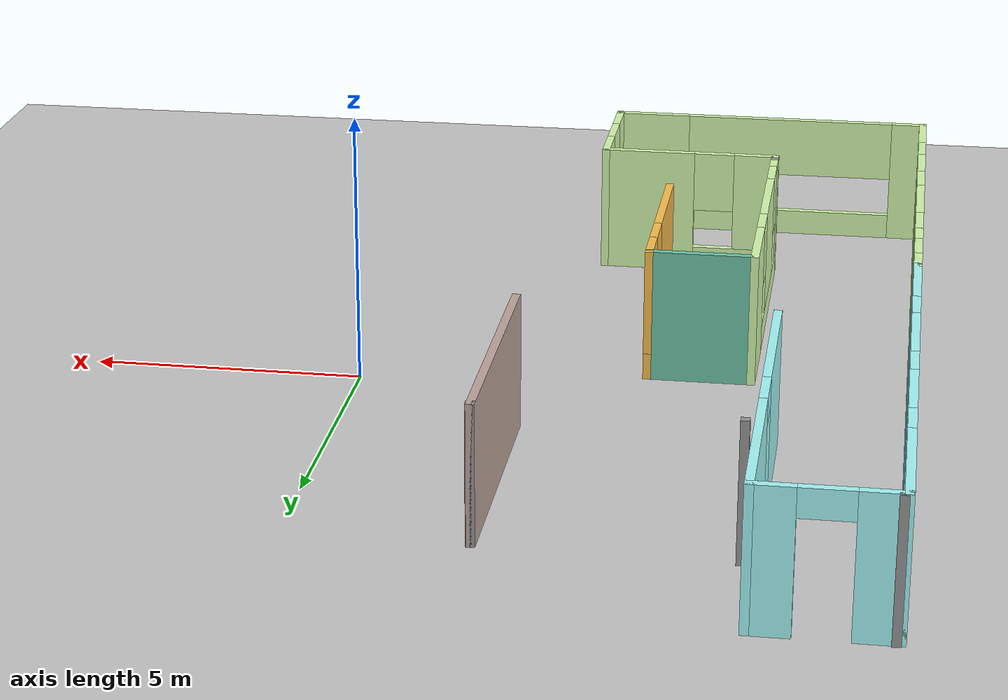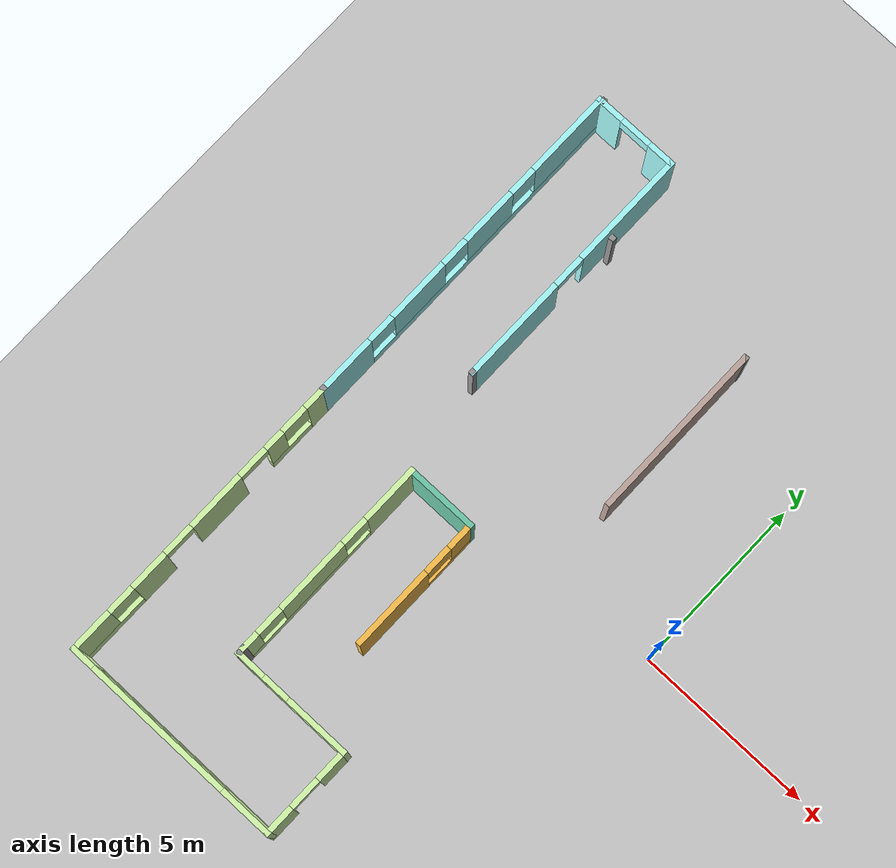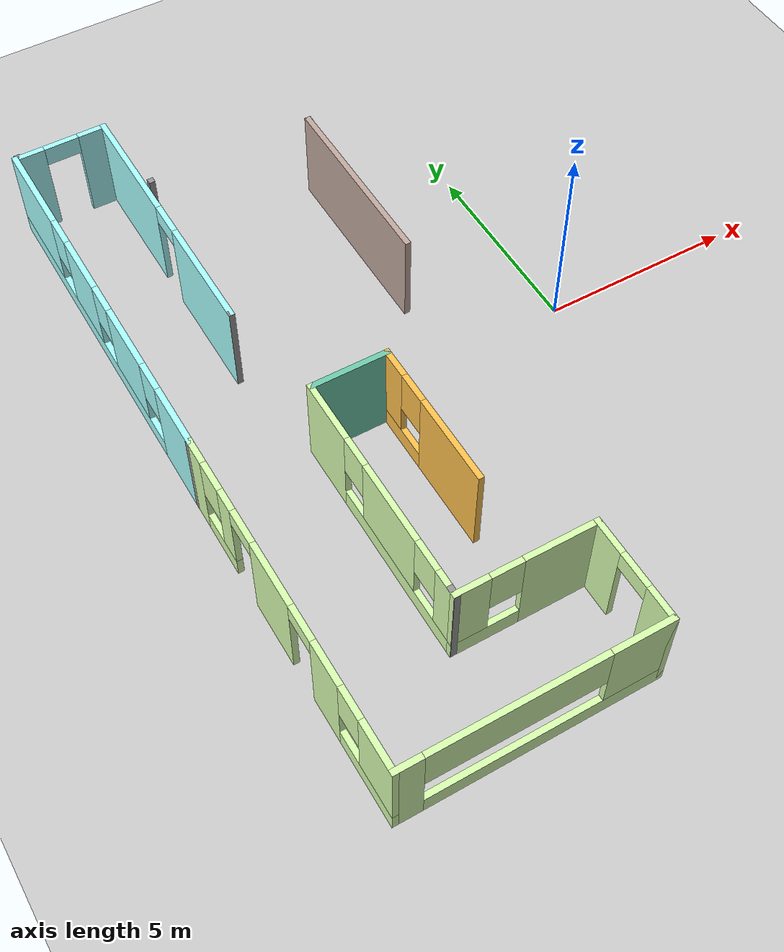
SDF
<sdf version="1.6">
 <world name="default">
  <model name="ground_plane">
   <static>1</static>
   <link name="link">
    <collision name="collision">
     <geometry><plane><normal>0 0 1</normal><size>100 100</size></plane></geometry>
     <surface>
      <contact><collide_bitmask>65535</collide_bitmask></contact>
      <friction><ode><mu>100</mu><mu2>50</mu2></ode></friction>
     </surface>
    </collision>
    <visual name="visual">
     <cast_shadows>0</cast_shadows>
     <geometry><plane><normal>0 0 1</normal><size>100 100</size></plane></geometry>
     <material>
      <script><uri>file://media/materials/scripts/gazebo.material</uri><name>Gazebo/Grey</name></script>
     </material>
    </visual>
   </link>
  </model>
  <model name="building">
   <pose>7.75122 8.09541 0 0 -0 0</pose>
   <link name="Wall_1">
    <pose>-13.0112 -10.8104 0 0 -0 1.5708</pose>
    <visual name="Wall_1_Visual_0">
     <pose>-0.814985 0 1.25 0 -0 0</pose>
     <geometry><box><size>2.37003 0.15 2.5</size></box></geometry>
     <material>
      <script><uri>file://media/materials/scripts/gazebo.material</uri><name>Gazebo/Grey</name></script>
      <ambient>1 0.764706 0.305882 1</ambient>
     </material>
     <meta><layer>0</layer></meta>
    </visual>
    <collision name="Wall_1_Collision_0">
     <geometry><box><size>2.37003 0.15 2.5</size></box></geometry>
     <pose>-0.814985 0 1.25 0 -0 0</pose>
    </collision>
    <visual name="Wall_1_Visual_1">
     <pose>1.18501 0 0.25 0 -0 0</pose>
     <geometry><box><size>1.62997 0.15 0.5</size></box></geometry>
     <material>
      <script><uri>file://media/materials/scripts/gazebo.material</uri><name>Gazebo/Grey</name></script>
      <ambient>1 0.764706 0.305882 1</ambient>
     </material>
     <meta><layer>0</layer></meta>
    </visual>
    <collision name="Wall_1_Collision_1">
     <geometry><box><size>1.62997 0.15 0.5</size></box></geometry>
     <pose>1.18501 0 0.25 0 -0 0</pose>
    </collision>
    <visual name="Wall_1_Visual_2">
     <pose>1.58502 0 1.5 0 -0 0</pose>
     <geometry><box><size>0.82997 0.15 2</size></box></geometry>
     <material>
      <script><uri>file://media/materials/scripts/gazebo.material</uri><name>Gazebo/Grey</name></script>
      <ambient>1 0.764706 0.305882 1</ambient>
     </material>
     <meta><layer>0</layer></meta>
    </visual>
    <collision name="Wall_1_Collision_2">
     <geometry><box><size>0.82997 0.15 2</size></box></geometry>
     <pose>1.58502 0 1.5 0 -0 0</pose>
    </collision>
    <visual name="Wall_1_Visual_3">
     <pose>0.77003 0 1.9 0 -0 0</pose>
     <geometry><box><size>0.8 0.15 1.2</size></box></geometry>
     <material>
      <script><uri>file://media/materials/scripts/gazebo.material</uri><name>Gazebo/Grey</name></script>
      <ambient>1 0.764706 0.305882 1</ambient>
     </material>
     <meta><layer>0</layer></meta>
    </visual>
    <collision name="Wall_1_Collision_3">
     <geometry><box><size>0.8 0.15 1.2</size></box></geometry>
     <pose>0.77003 0 1.9 0 -0 0</pose>
    </collision>
   </link>
   <link name="Wall_10">
    <collision name="Wall_10_Collision">
     <geometry><box><size>0.15 0.15 2.5</size></box></geometry>
     <pose>0 0 1.25 0 -0 0</pose>
    </collision>
    <visual name="Wall_10_Visual">
     <pose>0 0 1.25 0 -0 0</pose>
     <geometry><box><size>0.15 0.15 2.5</size></box></geometry>
     <material>
      <script><uri>file://media/materials/scripts/gazebo.material</uri><name>Gazebo/Grey</name></script>
      <ambient>1 1 1 1</ambient>
     </material>
     <meta><layer>0</layer></meta>
    </visual>
    <pose>-17.8612 -8.88541 0 0 -0 0</pose>
   </link>
   <link name="Wall_11">
    <collision name="Wall_11_Collision">
     <geometry><box><size>0.15 0.15 2.5</size></box></geometry>
     <pose>0 0 1.25 0 -0 0</pose>
    </collision>
    <visual name="Wall_11_Visual">
     <pose>0 0 1.25 0 -0 0</pose>
     <geometry><box><size>0.15 0.15 2.5</size></box></geometry>
     <material>
      <script><uri>file://media/materials/scripts/gazebo.material</uri><name>Gazebo/Grey</name></script>
      <ambient>1 1 1 1</ambient>
     </material>
     <meta><layer>0</layer></meta>
    </visual>
    <pose>-17.8612 -8.88541 0 0 -0 0</pose>
   </link>
   <link name="Wall_13">
    <collision name="Wall_13_Collision">
     <geometry><box><size>0.15 0.15 2.5</size></box></geometry>
     <pose>0 0 1.25 0 -0 0</pose>
    </collision>
    <visual name="Wall_13_Visual">
     <pose>0 0 1.25 0 -0 0</pose>
     <geometry><box><size>0.15 0.15 2.5</size></box></geometry>
     <material>
      <script><uri>file://media/materials/scripts/gazebo.material</uri><name>Gazebo/Grey</name></script>
      <ambient>1 1 1 1</ambient>
     </material>
     <meta><layer>0</layer></meta>
    </visual>
    <pose>-17.8612 -8.88541 0 0 -0 0</pose>
   </link>
   <link name="Wall_16">
    <collision name="Wall_16_Collision">
     <geometry><box><size>0.15 0.15 2.5</size></box></geometry>
     <pose>0 0 1.25 0 -0 0</pose>
    </collision>
    <visual name="Wall_16_Visual">
     <pose>0 0 1.25 0 -0 0</pose>
     <geometry><box><size>0.15 0.15 2.5</size></box></geometry>
     <material>
      <script><uri>file://media/materials/scripts/gazebo.material</uri><name>Gazebo/Grey</name></script>
      <ambient>1 1 1 1</ambient>
     </material>
     <meta><layer>0</layer></meta>
    </visual>
    <pose>-17.7916 1.00147 0 0 -0 0</pose>
   </link>
   <link name="Wall_30">
    <collision name="Wall_30_Collision">
     <geometry><box><size>0.15 0.15 2.5</size></box></geometry>
     <pose>0 0 1.25 0 -0 0</pose>
    </collision>
    <visual name="Wall_30_Visual">
     <pose>0 0 1.25 0 -0 0</pose>
     <geometry><box><size>0.15 0.15 2.5</size></box></geometry>
     <material>
      <script><uri>file://media/materials/scripts/gazebo.material</uri><name>Gazebo/Grey</name></script>
      <ambient>1 1 1 1</ambient>
     </material>
     <meta><layer>0</layer></meta>
    </visual>
    <pose>-17.7916 1.00147 0 0 -0 0</pose>
   </link>
   <link name="Wall_32">
    <pose>-17.8612 -3.96041 0 0 -0 1.5708</pose>
    <visual name="Wall_32_Visual_0">
     <pose>-4.15067 0 1.25 0 -0 0</pose>
     <geometry><box><size>1.69866 0.15 2.5</size></box></geometry>
     <material>
      <script><uri>file://media/materials/scripts/gazebo.material</uri><name>Gazebo/Grey</name></script>
      <ambient>0.666667 1 1 1</ambient>
     </material>
     <meta><layer>0</layer></meta>
    </visual>
    <collision name="Wall_32_Collision_0">
     <geometry><box><size>1.69866 0.15 2.5</size></box></geometry>
     <pose>-4.15067 0 1.25 0 -0 0</pose>
    </collision>
    <visual name="Wall_32_Visual_1">
     <pose>0.849329 0 0.25 0 -0 0</pose>
     <geometry><box><size>8.30134 0.15 0.5</size></box></geometry>
     <material>
      <script><uri>file://media/materials/scripts/gazebo.material</uri><name>Gazebo/Grey</name></script>
      <ambient>0.666667 1 1 1</ambient>
     </material>
     <meta><layer>0</layer></meta>
    </visual>
    <collision name="Wall_32_Collision_1">
     <geometry><box><size>8.30134 0.15 0.5</size></box></geometry>
     <pose>0.849329 0 0.25 0 -0 0</pose>
    </collision>
    <visual name="Wall_32_Visual_2">
     <pose>-1.60099 0 1.5 0 -0 0</pose>
     <geometry><box><size>1.8007 0.15 2</size></box></geometry>
     <material>
      <script><uri>file://media/materials/scripts/gazebo.material</uri><name>Gazebo/Grey</name></script>
      <ambient>0.666667 1 1 1</ambient>
     </material>
     <meta><layer>0</layer></meta>
    </visual>
    <collision name="Wall_32_Collision_2">
     <geometry><box><size>1.8007 0.15 2</size></box></geometry>
     <pose>-1.60099 0 1.5 0 -0 0</pose>
    </collision>
    <visual name="Wall_32_Visual_3">
     <pose>0.90845 0 1.5 0 -0 0</pose>
     <geometry><box><size>1.61819 0.15 2</size></box></geometry>
     <material>
      <script><uri>file://media/materials/scripts/gazebo.material</uri><name>Gazebo/Grey</name></script>
      <ambient>0.666667 1 1 1</ambient>
     </material>
     <meta><layer>0</layer></meta>
    </visual>
    <collision name="Wall_32_Collision_3">
     <geometry><box><size>1.61819 0.15 2</size></box></geometry>
     <pose>0.90845 0 1.5 0 -0 0</pose>
    </collision>
    <visual name="Wall_32_Visual_4">
     <pose>3.75877 0 1.5 0 -0 0</pose>
     <geometry><box><size>2.48245 0.15 2</size></box></geometry>
     <material>
      <script><uri>file://media/materials/scripts/gazebo.material</uri><name>Gazebo/Grey</name></script>
      <ambient>0.666667 1 1 1</ambient>
     </material>
     <meta><layer>0</layer></meta>
    </visual>
    <collision name="Wall_32_Collision_4">
     <geometry><box><size>2.48245 0.15 2</size></box></geometry>
     <pose>3.75877 0 1.5 0 -0 0</pose>
    </collision>
    <visual name="Wall_32_Visual_5">
     <pose>-2.90134 0 1.9 0 -0 0</pose>
     <geometry><box><size>0.8 0.15 1.2</size></box></geometry>
     <material>
      <script><uri>file://media/materials/scripts/gazebo.material</uri><name>Gazebo/Grey</name></script>
      <ambient>0.666667 1 1 1</ambient>
     </material>
     <meta><layer>0</layer></meta>
    </visual>
    <collision name="Wall_32_Collision_5">
     <geometry><box><size>0.8 0.15 1.2</size></box></geometry>
     <pose>-2.90134 0 1.9 0 -0 0</pose>
    </collision>
    <visual name="Wall_32_Visual_6">
     <pose>-0.300645 0 1.9 0 -0 0</pose>
     <geometry><box><size>0.8 0.15 1.2</size></box></geometry>
     <material>
      <script><uri>file://media/materials/scripts/gazebo.material</uri><name>Gazebo/Grey</name></script>
      <ambient>0.666667 1 1 1</ambient>
     </material>
     <meta><layer>0</layer></meta>
    </visual>
    <collision name="Wall_32_Collision_6">
     <geometry><box><size>0.8 0.15 1.2</size></box></geometry>
     <pose>-0.300645 0 1.9 0 -0 0</pose>
    </collision>
    <visual name="Wall_32_Visual_7">
     <pose>2.11755 0 1.9 0 -0 0</pose>
     <geometry><box><size>0.8 0.15 1.2</size></box></geometry>
     <material>
      <script><uri>file://media/materials/scripts/gazebo.material</uri><name>Gazebo/Grey</name></script>
      <ambient>0.666667 1 1 1</ambient>
     </material>
     <meta><layer>0</layer></meta>
    </visual>
    <collision name="Wall_32_Collision_7">
     <geometry><box><size>0.8 0.15 1.2</size></box></geometry>
     <pose>2.11755 0 1.9 0 -0 0</pose>
    </collision>
   </link>
   <link name="Wall_33">
    <pose>-16.6862 0.964587 0 0 -0 0</pose>
    <visual name="Wall_33_Visual_0">
     <pose>-0.841239 0 1.25 0 -0 0</pose>
     <geometry><box><size>0.817523 0.15 2.5</size></box></geometry>
     <material>
      <script><uri>file://media/materials/scripts/gazebo.material</uri><name>Gazebo/Grey</name></script>
      <ambient>0.666667 1 1 1</ambient>
     </material>
     <meta><layer>0</layer></meta>
    </visual>
    <collision name="Wall_33_Collision_0">
     <geometry><box><size>0.817523 0.15 2.5</size></box></geometry>
     <pose>-0.841239 0 1.25 0 -0 0</pose>
    </collision>
    <visual name="Wall_33_Visual_1">
     <pose>0.858761 0 1.25 0 -0 0</pose>
     <geometry><box><size>0.782477 0.15 2.5</size></box></geometry>
     <material>
      <script><uri>file://media/materials/scripts/gazebo.material</uri><name>Gazebo/Grey</name></script>
      <ambient>0.666667 1 1 1</ambient>
     </material>
     <meta><layer>0</layer></meta>
    </visual>
    <collision name="Wall_33_Collision_1">
     <geometry><box><size>0.782477 0.15 2.5</size></box></geometry>
     <pose>0.858761 0 1.25 0 -0 0</pose>
    </collision>
    <visual name="Wall_33_Visual_2">
     <pose>0.017523 0 2.25 0 -0 0</pose>
     <geometry><box><size>0.9 0.15 0.5</size></box></geometry>
     <material>
      <script><uri>file://media/materials/scripts/gazebo.material</uri><name>Gazebo/Grey</name></script>
      <ambient>0.666667 1 1 1</ambient>
     </material>
     <meta><layer>0</layer></meta>
    </visual>
    <collision name="Wall_33_Collision_2">
     <geometry><box><size>0.9 0.15 0.5</size></box></geometry>
     <pose>0.017523 0 2.25 0 -0 0</pose>
    </collision>
   </link>
   <link name="Wall_34">
    <pose>-15.5112 -2.58541 0 0 0 -1.5708</pose>
    <visual name="Wall_34_Visual_0">
     <pose>-1.9693 0 1.25 0 -0 0</pose>
     <geometry><box><size>3.31141 0.15 2.5</size></box></geometry>
     <material>
      <script><uri>file://media/materials/scripts/gazebo.material</uri><name>Gazebo/Grey</name></script>
      <ambient>0.666667 1 1 1</ambient>
     </material>
     <meta><layer>0</layer></meta>
    </visual>
    <collision name="Wall_34_Collision_0">
     <geometry><box><size>3.31141 0.15 2.5</size></box></geometry>
     <pose>-1.9693 0 1.25 0 -0 0</pose>
    </collision>
    <visual name="Wall_34_Visual_1">
     <pose>2.1057 0 1.25 0 -0 0</pose>
     <geometry><box><size>3.03859 0.15 2.5</size></box></geometry>
     <material>
      <script><uri>file://media/materials/scripts/gazebo.material</uri><name>Gazebo/Grey</name></script>
      <ambient>0.666667 1 1 1</ambient>
     </material>
     <meta><layer>0</layer></meta>
    </visual>
    <collision name="Wall_34_Collision_1">
     <geometry><box><size>3.03859 0.15 2.5</size></box></geometry>
     <pose>2.1057 0 1.25 0 -0 0</pose>
    </collision>
    <visual name="Wall_34_Visual_2">
     <pose>0.136405 0 2.25 0 -0 0</pose>
     <geometry><box><size>0.9 0.15 0.5</size></box></geometry>
     <material>
      <script><uri>file://media/materials/scripts/gazebo.material</uri><name>Gazebo/Grey</name></script>
      <ambient>0.666667 1 1 1</ambient>
     </material>
     <meta><layer>0</layer></meta>
    </visual>
    <collision name="Wall_34_Collision_2">
     <geometry><box><size>0.9 0.15 0.5</size></box></geometry>
     <pose>0.136405 0 2.25 0 -0 0</pose>
    </collision>
   </link>
   <link name="Wall_35">
    <collision name="Wall_35_Collision">
     <geometry><box><size>0.15 0.15 2.5</size></box></geometry>
     <pose>0 0 1.25 0 -0 0</pose>
    </collision>
    <visual name="Wall_35_Visual">
     <pose>0 0 1.25 0 -0 0</pose>
     <geometry><box><size>0.15 0.15 2.5</size></box></geometry>
     <material>
      <script><uri>file://media/materials/scripts/gazebo.material</uri><name>Gazebo/Grey</name></script>
      <ambient>1 1 1 1</ambient>
     </material>
     <meta><layer>0</layer></meta>
    </visual>
    <pose>-15.5112 -6.13541 0 0 -0 0</pose>
   </link>
   <link name="Wall_38">
    <collision name="Wall_38_Collision">
     <geometry><box><size>0.15 0.15 2.5</size></box></geometry>
     <pose>0 0 1.25 0 -0 0</pose>
    </collision>
    <visual name="Wall_38_Visual">
     <pose>0 0 1.25 0 -0 0</pose>
     <geometry><box><size>0.15 0.15 2.5</size></box></geometry>
     <material>
      <script><uri>file://media/materials/scripts/gazebo.material</uri><name>Gazebo/Grey</name></script>
      <ambient>1 1 1 1</ambient>
     </material>
     <meta><layer>0</layer></meta>
    </visual>
    <pose>-15.2916 -1.38541 0 0 -0 0</pose>
   </link>
   <link name="Wall_39">
    <collision name="Wall_39_Collision">
     <geometry><box><size>0.15 0.15 2.5</size></box></geometry>
     <pose>0 0 1.25 0 -0 0</pose>
    </collision>
    <visual name="Wall_39_Visual">
     <pose>0 0 1.25 0 -0 0</pose>
     <geometry><box><size>0.15 0.15 2.5</size></box></geometry>
     <material>
      <script><uri>file://media/materials/scripts/gazebo.material</uri><name>Gazebo/Grey</name></script>
      <ambient>1 1 1 1</ambient>
     </material>
     <meta><layer>0</layer></meta>
    </visual>
    <pose>-15.2916 -1.38541 0 0 -0 0</pose>
   </link>
   <link name="Wall_41">
    <collision name="Wall_41_Collision">
     <geometry><box><size>5 0.15 2.5</size></box></geometry>
     <pose>0 0 1.25 0 -0 0</pose>
    </collision>
    <visual name="Wall_41_Visual">
     <pose>0 0 1.25 0 -0 0</pose>
     <geometry><box><size>5 0.15 2.5</size></box></geometry>
     <material>
      <script><uri>file://media/materials/scripts/gazebo.material</uri><name>Gazebo/Grey</name></script>
      <ambient>0.760784 0.662745 0.627451 1</ambient>
     </material>
     <meta><layer>0</layer></meta>
    </visual>
    <pose>-10.9502 -3.8132 0 0 -0 1.5708</pose>
   </link>
   <link name="Wall_42">
    <collision name="Wall_42_Collision">
     <geometry><box><size>0.16 0.15 2.5</size></box></geometry>
     <pose>0 0 1.25 0 -0 0</pose>
    </collision>
    <visual name="Wall_42_Visual">
     <pose>0 0 1.25 0 -0 0</pose>
     <geometry><box><size>0.16 0.15 2.5</size></box></geometry>
     <material>
      <script><uri>file://media/materials/scripts/gazebo.material</uri><name>Gazebo/Grey</name></script>
      <ambient>1 1 1 1</ambient>
     </material>
     <meta><layer>0</layer></meta>
    </visual>
    <pose>-10.9452 -1.3882 0 0 -0 0</pose>
   </link>
   <link name="Wall_46">
    <collision name="Wall_46_Collision">
     <geometry><box><size>2.06083 0.15 2.5</size></box></geometry>
     <pose>0 0 1.25 0 -0 0</pose>
    </collision>
    <visual name="Wall_46_Visual">
     <pose>0 0 1.25 0 -0 0</pose>
     <geometry><box><size>2.06083 0.15 2.5</size></box></geometry>
     <material>
      <script><uri>file://media/materials/scripts/gazebo.material</uri><name>Gazebo/Grey</name></script>
      <ambient>0.435294 0.796078 0.67451 1</ambient>
     </material>
     <meta><layer>0</layer></meta>
    </visual>
    <pose>-13.9666 -8.88541 0 0 -0 3.14159</pose>
   </link>
   <link name="Wall_47">
    <pose>-14.9373 -11.8104 0 0 0 -1.5708</pose>
    <visual name="Wall_47_Visual_0">
     <pose>-2.15917 0 1.25 0 -0 0</pose>
     <geometry><box><size>1.68166 0.15 2.5</size></box></geometry>
     <material>
      <script><uri>file://media/materials/scripts/gazebo.material</uri><name>Gazebo/Grey</name></script>
      <ambient>0.85098 1 0.690196 1</ambient>
     </material>
     <meta><layer>0</layer></meta>
    </visual>
    <collision name="Wall_47_Collision_0">
     <geometry><box><size>1.68166 0.15 2.5</size></box></geometry>
     <pose>-2.15917 0 1.25 0 -0 0</pose>
    </collision>
    <visual name="Wall_47_Visual_1">
     <pose>0.84083 0 0.25 0 -0 0</pose>
     <geometry><box><size>4.31834 0.15 0.5</size></box></geometry>
     <material>
      <script><uri>file://media/materials/scripts/gazebo.material</uri><name>Gazebo/Grey</name></script>
      <ambient>0.85098 1 0.690196 1</ambient>
     </material>
     <meta><layer>0</layer></meta>
    </visual>
    <collision name="Wall_47_Collision_1">
     <geometry><box><size>4.31834 0.15 0.5</size></box></geometry>
     <pose>0.84083 0 0.25 0 -0 0</pose>
    </collision>
    <visual name="Wall_47_Visual_2">
     <pose>0.556909 0 1.5 0 -0 0</pose>
     <geometry><box><size>2.1505 0.15 2</size></box></geometry>
     <material>
      <script><uri>file://media/materials/scripts/gazebo.material</uri><name>Gazebo/Grey</name></script>
      <ambient>0.85098 1 0.690196 1</ambient>
     </material>
     <meta><layer>0</layer></meta>
    </visual>
    <collision name="Wall_47_Collision_2">
     <geometry><box><size>2.1505 0.15 2</size></box></geometry>
     <pose>0.556909 0 1.5 0 -0 0</pose>
    </collision>
    <visual name="Wall_47_Visual_3">
     <pose>2.71608 0 1.5 0 -0 0</pose>
     <geometry><box><size>0.567842 0.15 2</size></box></geometry>
     <material>
      <script><uri>file://media/materials/scripts/gazebo.material</uri><name>Gazebo/Grey</name></script>
      <ambient>0.85098 1 0.690196 1</ambient>
     </material>
     <meta><layer>0</layer></meta>
    </visual>
    <collision name="Wall_47_Collision_3">
     <geometry><box><size>0.567842 0.15 2</size></box></geometry>
     <pose>2.71608 0 1.5 0 -0 0</pose>
    </collision>
    <visual name="Wall_47_Visual_4">
     <pose>-0.91834 0 1.9 0 -0 0</pose>
     <geometry><box><size>0.8 0.15 1.2</size></box></geometry>
     <material>
      <script><uri>file://media/materials/scripts/gazebo.material</uri><name>Gazebo/Grey</name></script>
      <ambient>0.85098 1 0.690196 1</ambient>
     </material>
     <meta><layer>0</layer></meta>
    </visual>
    <collision name="Wall_47_Collision_4">
     <geometry><box><size>0.8 0.15 1.2</size></box></geometry>
     <pose>-0.91834 0 1.9 0 -0 0</pose>
    </collision>
    <visual name="Wall_47_Visual_5">
     <pose>2.03216 0 1.9 0 -0 0</pose>
     <geometry><box><size>0.8 0.15 1.2</size></box></geometry>
     <material>
      <script><uri>file://media/materials/scripts/gazebo.material</uri><name>Gazebo/Grey</name></script>
      <ambient>0.85098 1 0.690196 1</ambient>
     </material>
     <meta><layer>0</layer></meta>
    </visual>
    <collision name="Wall_47_Collision_5">
     <geometry><box><size>0.8 0.15 1.2</size></box></geometry>
     <pose>2.03216 0 1.9 0 -0 0</pose>
    </collision>
   </link>
   <link name="Wall_48">
    <collision name="Wall_48_Collision">
     <geometry><box><size>0.15 0.15 2.5</size></box></geometry>
     <pose>0 0 1.25 0 -0 0</pose>
    </collision>
    <visual name="Wall_48_Visual">
     <pose>0 0 1.25 0 -0 0</pose>
     <geometry><box><size>0.15 0.15 2.5</size></box></geometry>
     <material>
      <script><uri>file://media/materials/scripts/gazebo.material</uri><name>Gazebo/Grey</name></script>
      <ambient>1 1 1 1</ambient>
     </material>
     <meta><layer>0</layer></meta>
    </visual>
    <pose>-14.9373 -14.7354 0 0 -0 0</pose>
   </link>
   <link name="Wall_50">
    <pose>-17.8612 -13.1854 0 0 0 -1.5708</pose>
    <visual name="Wall_50_Visual_0">
     <pose>-4.02085 0 1.25 0 -0 0</pose>
     <geometry><box><size>0.7083 0.15 2.5</size></box></geometry>
     <material>
      <script><uri>file://media/materials/scripts/gazebo.material</uri><name>Gazebo/Grey</name></script>
      <ambient>0.85098 1 0.690196 1</ambient>
     </material>
     <meta><layer>0</layer></meta>
    </visual>
    <collision name="Wall_50_Collision_0">
     <geometry><box><size>0.7083 0.15 2.5</size></box></geometry>
     <pose>-4.02085 0 1.25 0 -0 0</pose>
    </collision>
    <visual name="Wall_50_Visual_1">
     <pose>-0.552361 0 1.25 0 -0 0</pose>
     <geometry><box><size>1.66958 0.15 2.5</size></box></geometry>
     <material>
      <script><uri>file://media/materials/scripts/gazebo.material</uri><name>Gazebo/Grey</name></script>
      <ambient>0.85098 1 0.690196 1</ambient>
     </material>
     <meta><layer>0</layer></meta>
    </visual>
    <collision name="Wall_50_Collision_1">
     <geometry><box><size>1.66958 0.15 2.5</size></box></geometry>
     <pose>-0.552361 0 1.25 0 -0 0</pose>
    </collision>
    <visual name="Wall_50_Visual_2">
     <pose>1.73878 0 1.25 0 -0 0</pose>
     <geometry><box><size>1.1127 0.15 2.5</size></box></geometry>
     <material>
      <script><uri>file://media/materials/scripts/gazebo.material</uri><name>Gazebo/Grey</name></script>
      <ambient>0.85098 1 0.690196 1</ambient>
     </material>
     <meta><layer>0</layer></meta>
    </visual>
    <collision name="Wall_50_Collision_2">
     <geometry><box><size>1.1127 0.15 2.5</size></box></geometry>
     <pose>1.73878 0 1.25 0 -0 0</pose>
    </collision>
    <visual name="Wall_50_Visual_3">
     <pose>-2.97693 0 0.25 0 -0 0</pose>
     <geometry><box><size>1.37955 0.15 0.5</size></box></geometry>
     <material>
      <script><uri>file://media/materials/scripts/gazebo.material</uri><name>Gazebo/Grey</name></script>
      <ambient>0.85098 1 0.690196 1</ambient>
     </material>
     <meta><layer>0</layer></meta>
    </visual>
    <collision name="Wall_50_Collision_3">
     <geometry><box><size>1.37955 0.15 0.5</size></box></geometry>
     <pose>-2.97693 0 0.25 0 -0 0</pose>
    </collision>
    <visual name="Wall_50_Visual_4">
     <pose>3.33507 0 0.25 0 -0 0</pose>
     <geometry><box><size>2.07987 0.15 0.5</size></box></geometry>
     <material>
      <script><uri>file://media/materials/scripts/gazebo.material</uri><name>Gazebo/Grey</name></script>
      <ambient>0.85098 1 0.690196 1</ambient>
     </material>
     <meta><layer>0</layer></meta>
    </visual>
    <collision name="Wall_50_Collision_4">
     <geometry><box><size>2.07987 0.15 0.5</size></box></geometry>
     <pose>3.33507 0 0.25 0 -0 0</pose>
    </collision>
    <visual name="Wall_50_Visual_5">
     <pose>-2.57693 0 1.5 0 -0 0</pose>
     <geometry><box><size>0.57955 0.15 2</size></box></geometry>
     <material>
      <script><uri>file://media/materials/scripts/gazebo.material</uri><name>Gazebo/Grey</name></script>
      <ambient>0.85098 1 0.690196 1</ambient>
     </material>
     <meta><layer>0</layer></meta>
    </visual>
    <collision name="Wall_50_Collision_5">
     <geometry><box><size>0.57955 0.15 2</size></box></geometry>
     <pose>-2.57693 0 1.5 0 -0 0</pose>
    </collision>
    <visual name="Wall_50_Visual_6">
     <pose>-2.57693 0 1.5 0 -0 0</pose>
     <geometry><box><size>0.57955 0.15 2</size></box></geometry>
     <material>
      <script><uri>file://media/materials/scripts/gazebo.material</uri><name>Gazebo/Grey</name></script>
      <ambient>0.85098 1 0.690196 1</ambient>
     </material>
     <meta><layer>0</layer></meta>
    </visual>
    <collision name="Wall_50_Collision_6">
     <geometry><box><size>0.57955 0.15 2</size></box></geometry>
     <pose>-2.57693 0 1.5 0 -0 0</pose>
    </collision>
    <visual name="Wall_50_Visual_7">
     <pose>3.73507 0 1.5 0 -0 0</pose>
     <geometry><box><size>1.27987 0.15 2</size></box></geometry>
     <material>
      <script><uri>file://media/materials/scripts/gazebo.material</uri><name>Gazebo/Grey</name></script>
      <ambient>0.85098 1 0.690196 1</ambient>
     </material>
     <meta><layer>0</layer></meta>
    </visual>
    <collision name="Wall_50_Collision_7">
     <geometry><box><size>1.27987 0.15 2</size></box></geometry>
     <pose>3.73507 0 1.5 0 -0 0</pose>
    </collision>
    <visual name="Wall_50_Visual_8">
     <pose>-3.2667 0 1.9 0 -0 0</pose>
     <geometry><box><size>0.8 0.15 1.2</size></box></geometry>
     <material>
      <script><uri>file://media/materials/scripts/gazebo.material</uri><name>Gazebo/Grey</name></script>
      <ambient>0.85098 1 0.690196 1</ambient>
     </material>
     <meta><layer>0</layer></meta>
    </visual>
    <collision name="Wall_50_Collision_8">
     <geometry><box><size>0.8 0.15 1.2</size></box></geometry>
     <pose>-3.2667 0 1.9 0 -0 0</pose>
    </collision>
    <visual name="Wall_50_Visual_9">
     <pose>2.69513 0 1.9 0 -0 0</pose>
     <geometry><box><size>0.8 0.15 1.2</size></box></geometry>
     <material>
      <script><uri>file://media/materials/scripts/gazebo.material</uri><name>Gazebo/Grey</name></script>
      <ambient>0.85098 1 0.690196 1</ambient>
     </material>
     <meta><layer>0</layer></meta>
    </visual>
    <collision name="Wall_50_Collision_9">
     <geometry><box><size>0.8 0.15 1.2</size></box></geometry>
     <pose>2.69513 0 1.9 0 -0 0</pose>
    </collision>
    <visual name="Wall_50_Visual_10">
     <pose>0.732429 0 2.25 0 -0 0</pose>
     <geometry><box><size>0.9 0.15 0.5</size></box></geometry>
     <material>
      <script><uri>file://media/materials/scripts/gazebo.material</uri><name>Gazebo/Grey</name></script>
      <ambient>0.85098 1 0.690196 1</ambient>
     </material>
     <meta><layer>0</layer></meta>
    </visual>
    <collision name="Wall_50_Collision_10">
     <geometry><box><size>0.9 0.15 0.5</size></box></geometry>
     <pose>0.732429 0 2.25 0 -0 0</pose>
    </collision>
    <visual name="Wall_50_Visual_11">
     <pose>-1.83715 0 2.25 0 -0 0</pose>
     <geometry><box><size>0.9 0.15 0.5</size></box></geometry>
     <material>
      <script><uri>file://media/materials/scripts/gazebo.material</uri><name>Gazebo/Grey</name></script>
      <ambient>0.85098 1 0.690196 1</ambient>
     </material>
     <meta><layer>0</layer></meta>
    </visual>
    <collision name="Wall_50_Collision_11">
     <geometry><box><size>0.9 0.15 0.5</size></box></geometry>
     <pose>-1.83715 0 2.25 0 -0 0</pose>
    </collision>
    <visual name="Wall_50_Visual_12">
     <pose>-1.83715 0 2.25 0 -0 0</pose>
     <geometry><box><size>0.9 0.15 0.5</size></box></geometry>
     <material>
      <script><uri>file://media/materials/scripts/gazebo.material</uri><name>Gazebo/Grey</name></script>
      <ambient>0.85098 1 0.690196 1</ambient>
     </material>
     <meta><layer>0</layer></meta>
    </visual>
    <collision name="Wall_50_Collision_12">
     <geometry><box><size>0.9 0.15 0.5</size></box></geometry>
     <pose>-1.83715 0 2.25 0 -0 0</pose>
    </collision>
   </link>
   <link name="Wall_51">
    <pose>-14.6862 -17.4854 0 0 -0 0</pose>
    <visual name="Wall_51_Visual_0">
     <pose>-2.89228 0 1.25 0 -0 0</pose>
     <geometry><box><size>0.715435 0.15 2.5</size></box></geometry>
     <material>
      <script><uri>file://media/materials/scripts/gazebo.material</uri><name>Gazebo/Grey</name></script>
      <ambient>0.85098 1 0.690196 1</ambient>
     </material>
     <meta><layer>0</layer></meta>
    </visual>
    <collision name="Wall_51_Collision_0">
     <geometry><box><size>0.715435 0.15 2.5</size></box></geometry>
     <pose>-2.89228 0 1.25 0 -0 0</pose>
    </collision>
    <visual name="Wall_51_Visual_1">
     <pose>0.357717 0 0.25 0 -0 0</pose>
     <geometry><box><size>5.78456 0.15 0.5</size></box></geometry>
     <material>
      <script><uri>file://media/materials/scripts/gazebo.material</uri><name>Gazebo/Grey</name></script>
      <ambient>0.85098 1 0.690196 1</ambient>
     </material>
     <meta><layer>0</layer></meta>
    </visual>
    <collision name="Wall_51_Collision_1">
     <geometry><box><size>5.78456 0.15 0.5</size></box></geometry>
     <pose>0.357717 0 0.25 0 -0 0</pose>
    </collision>
    <visual name="Wall_51_Visual_2">
     <pose>2.47631 0 1.5 0 -0 0</pose>
     <geometry><box><size>1.54739 0.15 2</size></box></geometry>
     <material>
      <script><uri>file://media/materials/scripts/gazebo.material</uri><name>Gazebo/Grey</name></script>
      <ambient>0.85098 1 0.690196 1</ambient>
     </material>
     <meta><layer>0</layer></meta>
    </visual>
    <collision name="Wall_51_Collision_2">
     <geometry><box><size>1.54739 0.15 2</size></box></geometry>
     <pose>2.47631 0 1.5 0 -0 0</pose>
    </collision>
    <visual name="Wall_51_Visual_3">
     <pose>-0.415977 0 1.9 0 -0 0</pose>
     <geometry><box><size>4.23718 0.15 1.2</size></box></geometry>
     <material>
      <script><uri>file://media/materials/scripts/gazebo.material</uri><name>Gazebo/Grey</name></script>
      <ambient>0.85098 1 0.690196 1</ambient>
     </material>
     <meta><layer>0</layer></meta>
    </visual>
    <collision name="Wall_51_Collision_3">
     <geometry><box><size>4.23718 0.15 1.2</size></box></geometry>
     <pose>-0.415977 0 1.9 0 -0 0</pose>
    </collision>
   </link>
   <link name="Wall_52">
    <pose>-11.5112 -16.1854 0 0 -0 1.5708</pose>
    <visual name="Wall_52_Visual_0">
     <pose>-0.927361 0 1.25 0 -0 0</pose>
     <geometry><box><size>0.895278 0.15 2.5</size></box></geometry>
     <material>
      <script><uri>file://media/materials/scripts/gazebo.material</uri><name>Gazebo/Grey</name></script>
      <ambient>0.85098 1 0.690196 1</ambient>
     </material>
     <meta><layer>0</layer></meta>
    </visual>
    <collision name="Wall_52_Collision_0">
     <geometry><box><size>0.895278 0.15 2.5</size></box></geometry>
     <pose>-0.927361 0 1.25 0 -0 0</pose>
    </collision>
    <visual name="Wall_52_Visual_1">
     <pose>0.897639 0 1.25 0 -0 0</pose>
     <geometry><box><size>0.954722 0.15 2.5</size></box></geometry>
     <material>
      <script><uri>file://media/materials/scripts/gazebo.material</uri><name>Gazebo/Grey</name></script>
      <ambient>0.85098 1 0.690196 1</ambient>
     </material>
     <meta><layer>0</layer></meta>
    </visual>
    <collision name="Wall_52_Collision_1">
     <geometry><box><size>0.954722 0.15 2.5</size></box></geometry>
     <pose>0.897639 0 1.25 0 -0 0</pose>
    </collision>
    <visual name="Wall_52_Visual_2">
     <pose>-0.029722 0 2.25 0 -0 0</pose>
     <geometry><box><size>0.9 0.15 0.5</size></box></geometry>
     <material>
      <script><uri>file://media/materials/scripts/gazebo.material</uri><name>Gazebo/Grey</name></script>
      <ambient>0.85098 1 0.690196 1</ambient>
     </material>
     <meta><layer>0</layer></meta>
    </visual>
    <collision name="Wall_52_Collision_2">
     <geometry><box><size>0.9 0.15 0.5</size></box></geometry>
     <pose>-0.029722 0 2.25 0 -0 0</pose>
    </collision>
   </link>
   <link name="Wall_53">
    <pose>-13.2242 -14.8854 0 0 -0 3.14159</pose>
    <visual name="Wall_53_Visual_0">
     <pose>-0.847032 0 1.25 0 -0 0</pose>
     <geometry><box><size>1.88198 0.15 2.5</size></box></geometry>
     <material>
      <script><uri>file://media/materials/scripts/gazebo.material</uri><name>Gazebo/Grey</name></script>
      <ambient>0.85098 1 0.690196 1</ambient>
     </material>
     <meta><layer>0</layer></meta>
    </visual>
    <collision name="Wall_53_Collision_0">
     <geometry><box><size>1.88198 0.15 2.5</size></box></geometry>
     <pose>-0.847032 0 1.25 0 -0 0</pose>
    </collision>
    <visual name="Wall_53_Visual_1">
     <pose>0.94099 0 0.25 0 -0 0</pose>
     <geometry><box><size>1.69406 0.15 0.5</size></box></geometry>
     <material>
      <script><uri>file://media/materials/scripts/gazebo.material</uri><name>Gazebo/Grey</name></script>
      <ambient>0.85098 1 0.690196 1</ambient>
     </material>
     <meta><layer>0</layer></meta>
    </visual>
    <collision name="Wall_53_Collision_1">
     <geometry><box><size>1.69406 0.15 0.5</size></box></geometry>
     <pose>0.94099 0 0.25 0 -0 0</pose>
    </collision>
    <visual name="Wall_53_Visual_2">
     <pose>1.34099 0 1.5 0 -0 0</pose>
     <geometry><box><size>0.894064 0.15 2</size></box></geometry>
     <material>
      <script><uri>file://media/materials/scripts/gazebo.material</uri><name>Gazebo/Grey</name></script>
      <ambient>0.85098 1 0.690196 1</ambient>
     </material>
     <meta><layer>0</layer></meta>
    </visual>
    <collision name="Wall_53_Collision_2">
     <geometry><box><size>0.894064 0.15 2</size></box></geometry>
     <pose>1.34099 0 1.5 0 -0 0</pose>
    </collision>
    <visual name="Wall_53_Visual_3">
     <pose>0.493958 0 1.9 0 -0 0</pose>
     <geometry><box><size>0.8 0.15 1.2</size></box></geometry>
     <material>
      <script><uri>file://media/materials/scripts/gazebo.material</uri><name>Gazebo/Grey</name></script>
      <ambient>0.85098 1 0.690196 1</ambient>
     </material>
     <meta><layer>0</layer></meta>
    </visual>
    <collision name="Wall_53_Collision_3">
     <geometry><box><size>0.8 0.15 1.2</size></box></geometry>
     <pose>0.493958 0 1.9 0 -0 0</pose>
    </collision>
   </link>
   <link name="Wall_54">
    <collision name="Wall_54_Collision">
     <geometry><box><size>0.15 0.15 2.5</size></box></geometry>
     <pose>0 0 1.25 0 -0 0</pose>
    </collision>
    <visual name="Wall_54_Visual">
     <pose>0 0 1.25 0 -0 0</pose>
     <geometry><box><size>0.15 0.15 2.5</size></box></geometry>
     <material>
      <script><uri>file://media/materials/scripts/gazebo.material</uri><name>Gazebo/Grey</name></script>
      <ambient>1 1 1 1</ambient>
     </material>
     <meta><layer>0</layer></meta>
    </visual>
    <pose>-14.9221 -14.8854 0 0 -0 0</pose>
   </link>
   <static>1</static>
  </model>
 </world>
</sdf>
